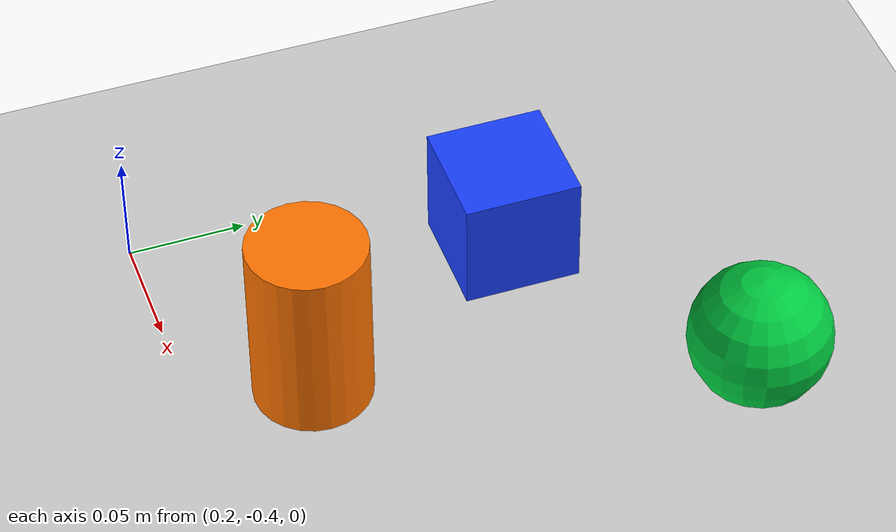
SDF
<?xml version="1.0" ?>

<sdf version="1.7">
  <world name="default">

    <!-- Plugin for simulating physics -->
    <plugin
      filename="gz-sim-physics-system"
      name="gz::sim::systems::Physics">
    </plugin>

    <!-- Plugin for handling user commands -->
    <plugin
      filename="gz-sim-user-commands-system"
      name="gz::sim::systems::UserCommands">
    </plugin>

    <!-- Plugin for broadcasting scene updates -->
    <plugin
      filename="gz-sim-scene-broadcaster-system"
      name="gz::sim::systems::SceneBroadcaster">
    </plugin>

    <!-- Plugin for sensor handling -->
    <plugin
      filename="gz-sim-sensors-system"
      name="gz::sim::systems::Sensors">
      <render_engine>ogre2</render_engine>
    </plugin>

    <!-- To add realistic gravity, do: 0.0 0.0 -9.8, otherwise do 0.0 0.0 0.0 -->
    <gravity>0.0 0.0 -9.8</gravity>

    <!-- Include a model of the Sun from an external URI -->
    <include>
      <uri>
        https://fuel.gazebosim.org/1.0/OpenRobotics/models/Sun
      </uri>
    </include>

    <!-- Include a model of the Ground Plane from an external URI -->
    <include>
      <uri>
        https://fuel.gazebosim.org/1.0/OpenRobotics/models/Ground Plane
      </uri>
    </include>

    <!-- Simple shape objects for visual context only. -->
    <model name="demo_blue_box">
      <static>false</static>
      <pose>0.25 -0.25 0.025 0 0 0</pose>
      <link name="link">
        <collision name="collision">
          <geometry>
            <box>
              <size>0.05 0.05 0.05</size>
            </box>
          </geometry>
        </collision>
        <visual name="visual">
          <geometry>
            <box>
              <size>0.05 0.05 0.05</size>
            </box>
          </geometry>
          <material>
            <ambient>0.1 0.25 1.0 1</ambient>
            <diffuse>0.1 0.25 1.0 1</diffuse>
          </material>
        </visual>
      </link>
    </model>

    <model name="demo_green_sphere">
      <static>false</static>
      <pose>0.36 -0.18 0.03 0 0 0</pose>
      <link name="link">
        <collision name="collision">
          <geometry>
            <sphere>
              <radius>0.03</radius>
            </sphere>
          </geometry>
        </collision>
        <visual name="visual">
          <geometry>
            <sphere>
              <radius>0.03</radius>
            </sphere>
          </geometry>
          <material>
            <ambient>0.0 0.8 0.25 1</ambient>
            <diffuse>0.0 0.8 0.25 1</diffuse>
          </material>
        </visual>
      </link>
    </model>

    <model name="demo_orange_cylinder">
      <static>false</static>
      <pose>0.30 -0.35 0.04 0 0 0</pose>
      <link name="link">
        <collision name="collision">
          <geometry>
            <cylinder>
              <radius>0.025</radius>
              <length>0.08</length>
            </cylinder>
          </geometry>
        </collision>
        <visual name="visual">
          <geometry>
            <cylinder>
              <radius>0.025</radius>
              <length>0.08</length>
            </cylinder>
          </geometry>
          <material>
            <ambient>1.0 0.45 0.0 1</ambient>
            <diffuse>1.0 0.45 0.0 1</diffuse>
          </material>
        </visual>
      </link>
    </model>

    <!-- Define scene properties -->
    <scene>
      <shadows>false</shadows>
    </scene>

  </world>
</sdf>
